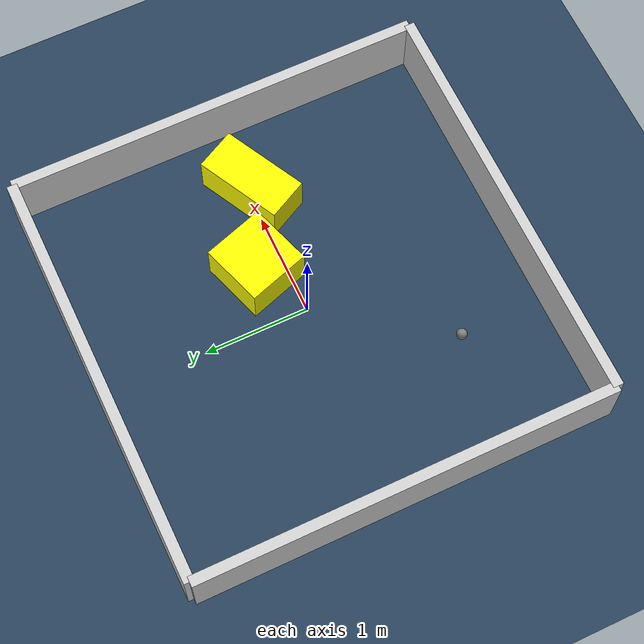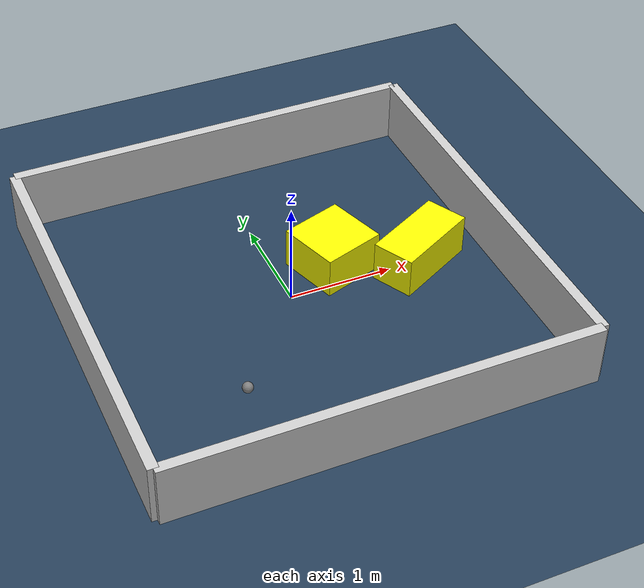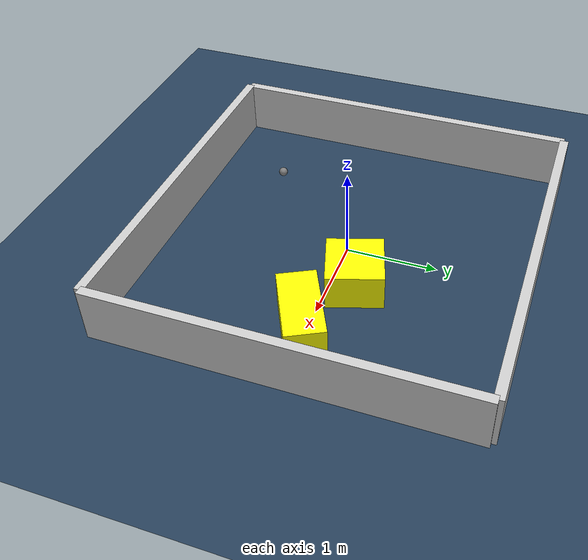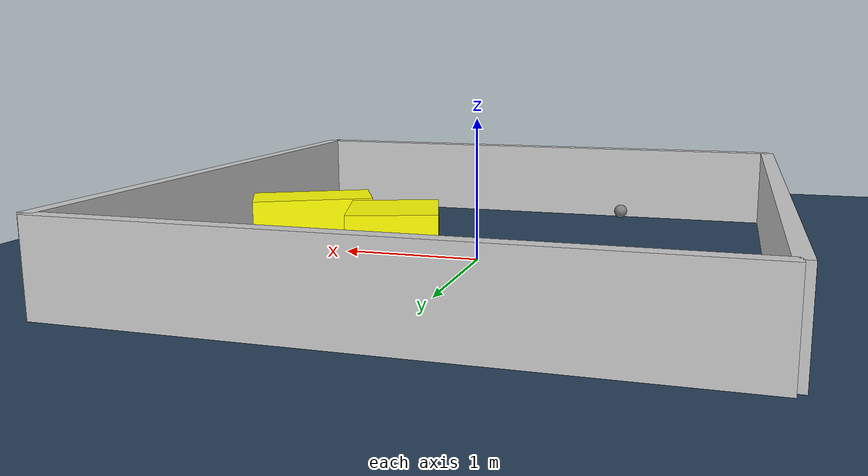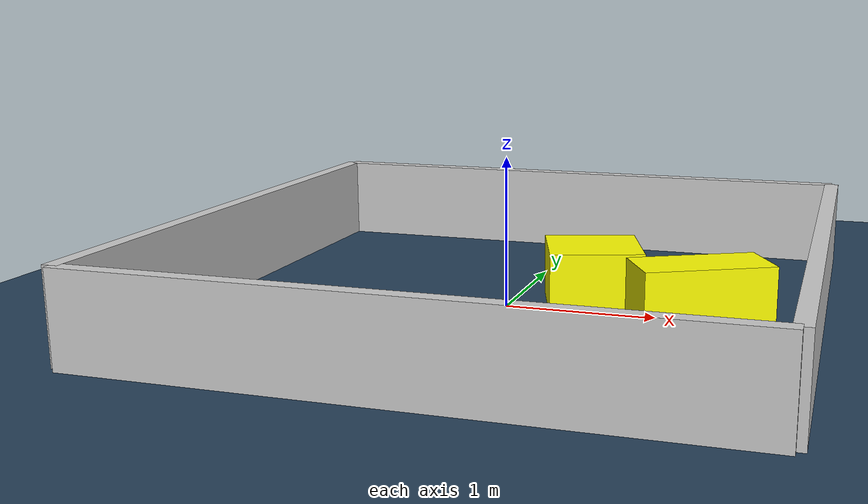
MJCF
<?xml version="1.0" ?>
<mujoco model="generated_environment">
  <option timestep="0.01" integrator="RK4" cone="elliptic"/>
  <default>
    <geom density="1"/>
  </default>
  <asset>
    <texture builtin="gradient" height="3072" rgb1="0.3 0.5 0.7" rgb2="0 0 0" type="skybox" width="512"/>
    <texture builtin="checker" height="300" mark="edge" markrgb="0.8 0.8 0.8" name="groundplane" rgb1="0.2 0.3 0.4" rgb2="0.1 0.2 0.3" type="2d" width="300"/>
    <material name="groundplane" reflectance="0.2" texrepeat="5 5" texture="groundplane" texuniform="true"/>
    <material name="robot" rgba="0.0 1.0 0.0 1"/>
  </asset>
  <worldbody>
    <light dir="0 0 -1" directional="true" pos="0 0 1.5"/>
    <geom condim="4" friction="1.0 0.005 0.001" material="groundplane" name="floor" size="0 0 0.05" type="plane"/>
    <body name="walls">
      <geom name="wall_1" condim="4" pos="-2.0 0.0 0.3" rgba="0.800000011920929 0.800000011920929 0.800000011920929 1.0" size="0.05 2.0 0.3" type="box"/>
      <geom name="wall_2" condim="4" pos="2.0 0.0 0.3" rgba="0.800000011920929 0.800000011920929 0.800000011920929 1.0" size="0.05 2.0 0.3" type="box"/>
      <geom name="wall_3" condim="4" pos="0.0 -2.0 0.3" rgba="0.800000011920929 0.800000011920929 0.800000011920929 1.0" size="2.0 0.05 0.3" type="box"/>
      <geom name="wall_4" condim="4" pos="0.0 2.0 0.3" rgba="0.800000011920929 0.800000011920929 0.800000011920929 1.0" size="2.0 0.05 0.3" type="box"/>
    </body>
    <body name="robot">
      <joint name="joint_x" type="slide" pos="0 0 0" axis="1 0 0"/>
      <joint name="joint_y" type="slide" pos="0 0 0" axis="0 1 0"/>
      <geom name="robot" type="sphere" pos="-0.8761776665672132 -1.111213430137259 0.2" size="0.05" mass="5." friction="1.0 0.005 0.0001" condim="4"/>
      <site name="sensor_ball"/>
    </body>
    <body name="obstacle_1_movable">
      <geom name="obstacle_1_movable" condim="4" pos="0.5285376171187033 0.2591076090072244 0.2" euler="0 0 18.038986710744418" friction="1.0 0.005 0.001" rgba="1 1 0 1" size="0.30928834209461675 0.30278040090537706 0.2" type="box" mass="0.1"/>
      <joint type="free"/>
    </body>
    <body name="obstacle_2_movable">
      <geom name="obstacle_2_movable" condim="4" pos="1.2875770822255435 -0.03875127487724206 0.2" euler="0 0 207.31665947001417" friction="1.0 0.005 0.001" rgba="1 1 0 1" size="0.4280723101026105 0.20698206516493084 0.2" type="box" mass="0.1"/>
      <joint type="free"/>
    </body>
  </worldbody>
  <actuator>
    <motor name="actuator_x" joint="joint_x" gear="1" ctrlrange="-1 1"/>
    <motor name="actuator_y" joint="joint_y" gear="1" ctrlrange="-1 1"/>
  </actuator>
</mujoco>
